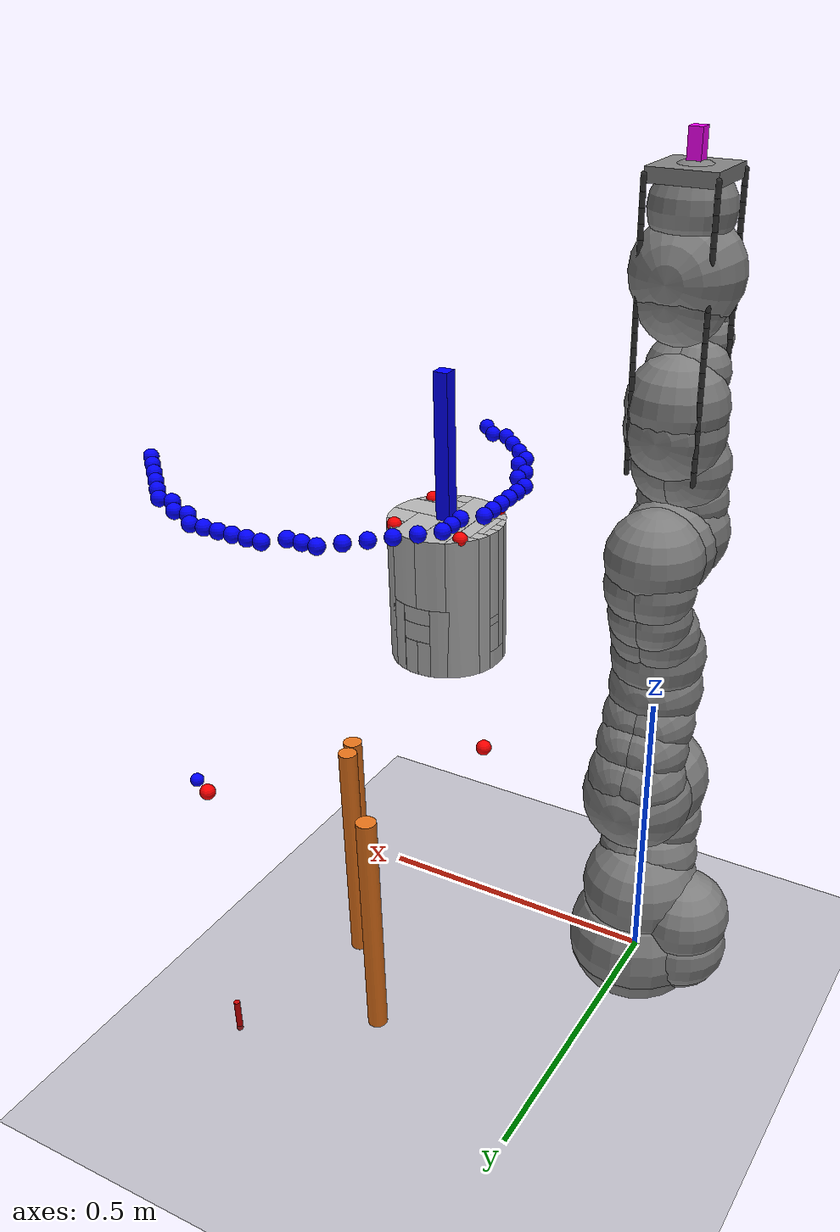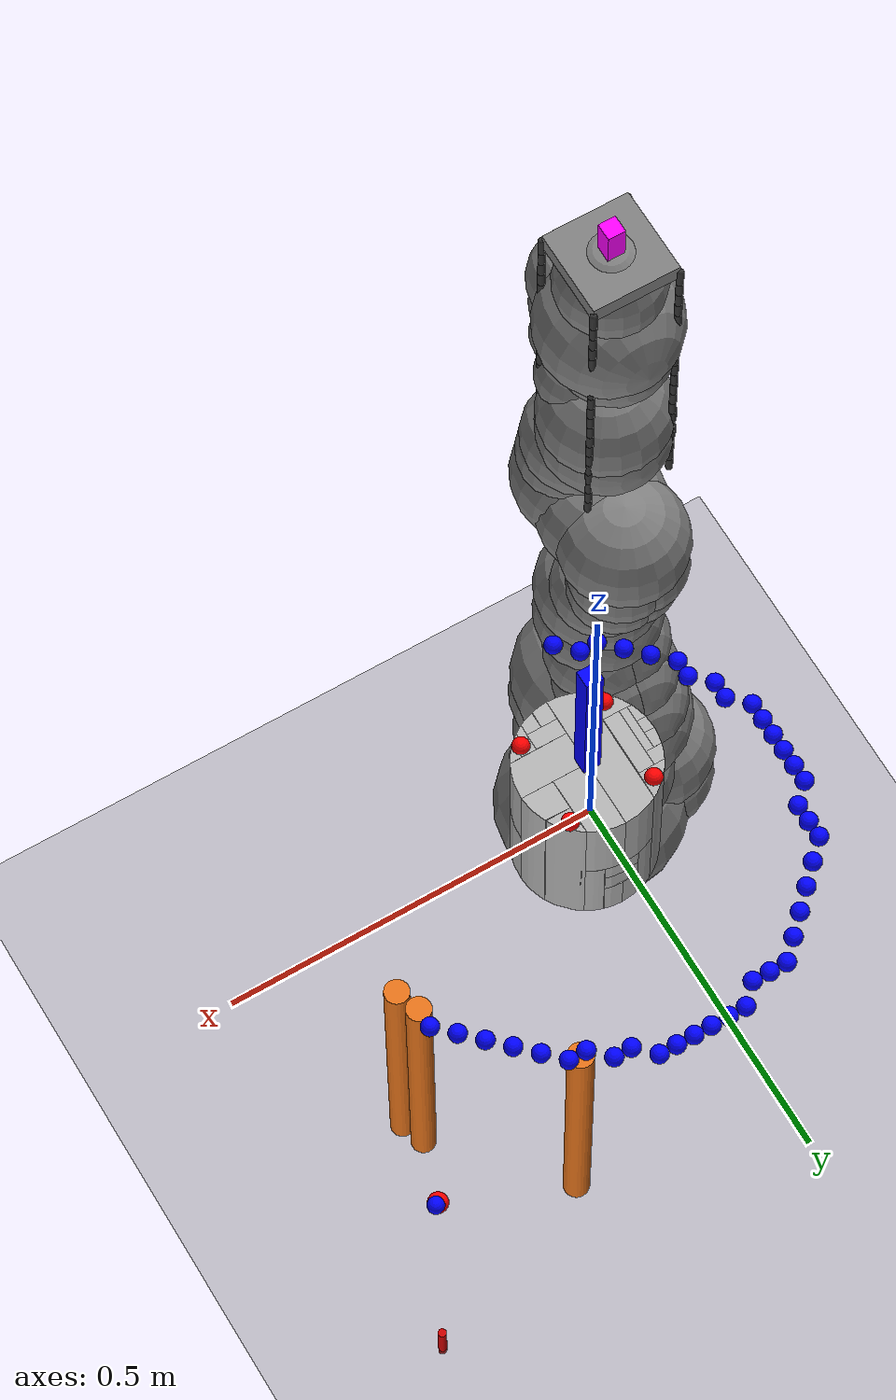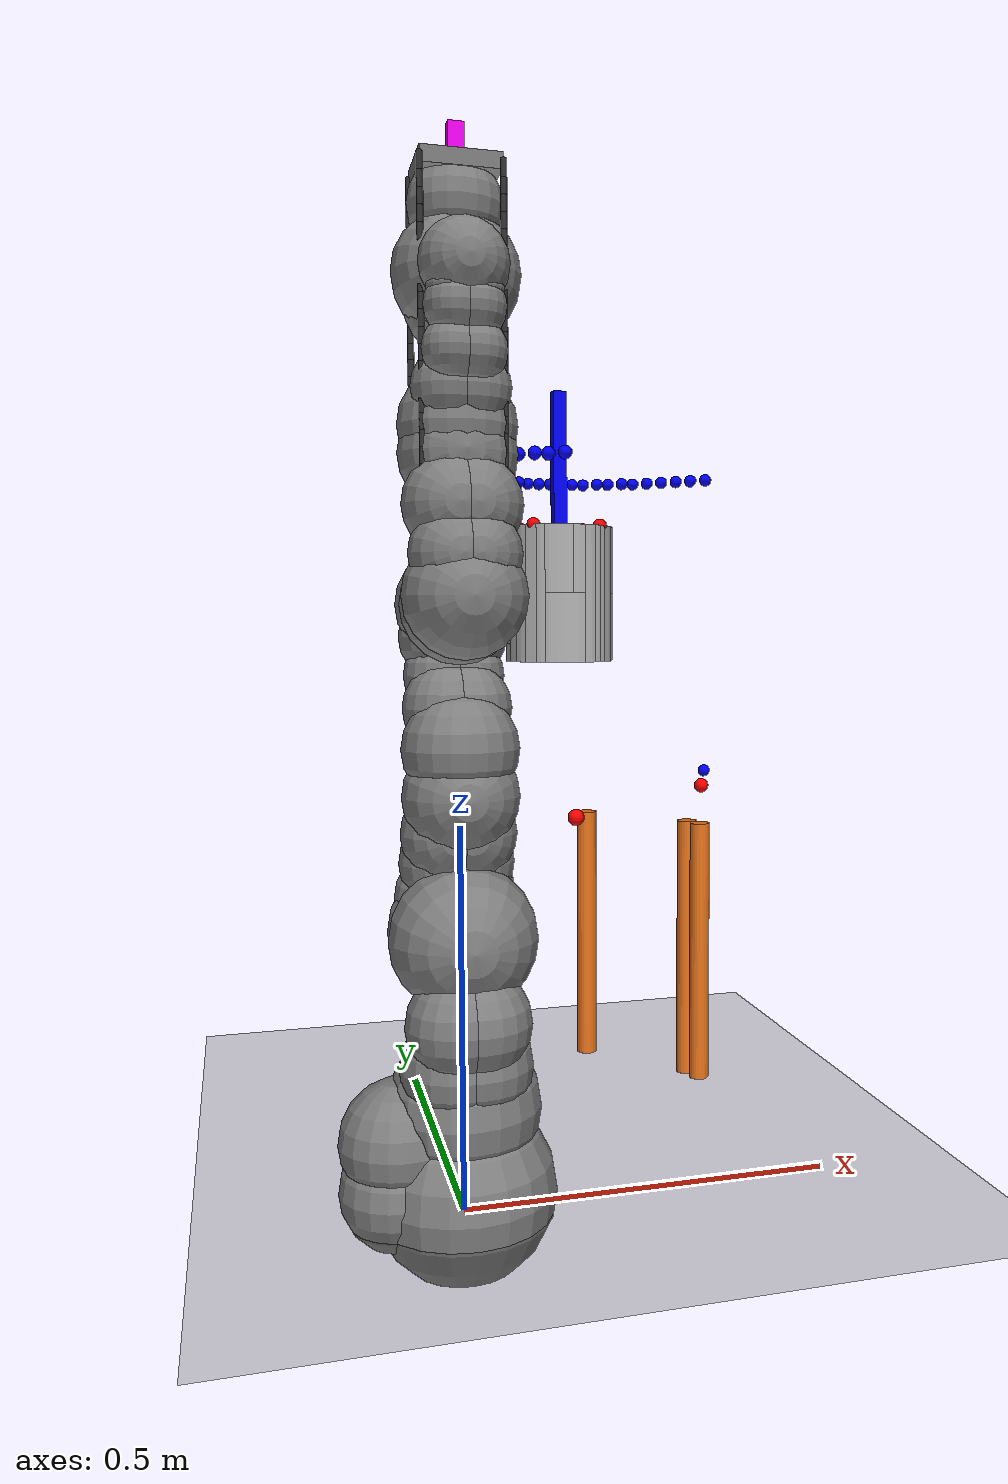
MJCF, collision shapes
<mujoco model="iiwa14_lifting_scene_sensors_compatible">

  <!-- 加载机械臂 -->
  <include file="iiwa14_four_cables_with_plate.xml"/>

  <option integrator="implicitfast" gravity="0 0 -9.81"/>

  <asset>
    <material name="groundplane" rgba="0.3 0.3 0.3 1"/>
    <material name="concrete" rgba="0.7 0.7 0.7 1.0"/>
    <material name="red" rgba="0.8 0 0 1"/>
    <material name="steel" rgba="0.6 0.6 0.6 1"/>
    <material name="obstacle" rgba="0.9 0.45 0.1 1"/>

    <mesh name="hollow_cylinder_convex_0"  file="hollow_cylinder_convex_0.stl"/>
    <mesh name="hollow_cylinder_convex_1"  file="hollow_cylinder_convex_1.stl"/>
    <mesh name="hollow_cylinder_convex_2"  file="hollow_cylinder_convex_2.stl"/>
    <mesh name="hollow_cylinder_convex_3"  file="hollow_cylinder_convex_3.stl"/>
    <mesh name="hollow_cylinder_convex_4"  file="hollow_cylinder_convex_4.stl"/>
    <mesh name="hollow_cylinder_convex_5"  file="hollow_cylinder_convex_5.stl"/>
    <mesh name="hollow_cylinder_convex_6"  file="hollow_cylinder_convex_6.stl"/>
    <mesh name="hollow_cylinder_convex_7"  file="hollow_cylinder_convex_7.stl"/>
    <mesh name="hollow_cylinder_convex_8"  file="hollow_cylinder_convex_8.stl"/>
    <mesh name="hollow_cylinder_convex_9"  file="hollow_cylinder_convex_9.stl"/>
    <mesh name="hollow_cylinder_convex_10"  file="hollow_cylinder_convex_10.stl"/>
    <mesh name="hollow_cylinder_convex_11"  file="hollow_cylinder_convex_11.stl"/>
    <mesh name="hollow_cylinder_convex_12"  file="hollow_cylinder_convex_12.stl"/>
    <mesh name="hollow_cylinder_convex_13"  file="hollow_cylinder_convex_13.stl"/>
    <mesh name="hollow_cylinder_convex_14"  file="hollow_cylinder_convex_14.stl"/>
    <mesh name="hollow_cylinder_convex_15"  file="hollow_cylinder_convex_15.stl"/>
    <mesh name="hollow_cylinder_convex_16"  file="hollow_cylinder_convex_16.stl"/>
    <mesh name="hollow_cylinder_convex_17"  file="hollow_cylinder_convex_17.stl"/>
    <mesh name="hollow_cylinder_convex_18"  file="hollow_cylinder_convex_18.stl"/>
    <mesh name="hollow_cylinder_convex_19"  file="hollow_cylinder_convex_19.stl"/>
    <mesh name="hollow_cylinder_convex_20"  file="hollow_cylinder_convex_20.stl"/>
    <mesh name="hollow_cylinder_convex_21"  file="hollow_cylinder_convex_21.stl"/>
    <mesh name="hollow_cylinder_convex_22"  file="hollow_cylinder_convex_22.stl"/>
    <mesh name="hollow_cylinder_convex_23"  file="hollow_cylinder_convex_23.stl"/>
    <mesh name="hollow_cylinder_convex_24"  file="hollow_cylinder_convex_24.stl"/>
    <mesh name="hollow_cylinder_convex_25"  file="hollow_cylinder_convex_25.stl"/>
    <mesh name="hollow_cylinder_convex_26"  file="hollow_cylinder_convex_26.stl"/>
    <mesh name="hollow_cylinder_convex_27"  file="hollow_cylinder_convex_27.stl"/>
    <mesh name="hollow_cylinder_convex_28"  file="hollow_cylinder_convex_28.stl"/>
    <mesh name="hollow_cylinder_convex_29"  file="hollow_cylinder_convex_29.stl"/>
    <mesh name="hollow_cylinder_convex_30"  file="hollow_cylinder_convex_30.stl"/>
    <mesh name="hollow_cylinder_convex_31"  file="hollow_cylinder_convex_31.stl"/>
    <mesh name="hollow_cylinder_convex_32"  file="hollow_cylinder_convex_32.stl"/>
    <mesh name="hollow_cylinder_convex_33"  file="hollow_cylinder_convex_33.stl"/>
    <mesh name="hollow_cylinder_convex_34"  file="hollow_cylinder_convex_34.stl"/>
    <mesh name="hollow_cylinder_convex_35"  file="hollow_cylinder_convex_35.stl"/>
    <mesh name="hollow_cylinder_convex_36"  file="hollow_cylinder_convex_36.stl"/>
    <mesh name="hollow_cylinder_convex_37"  file="hollow_cylinder_convex_37.stl"/>
    <mesh name="hollow_cylinder_convex_38"  file="hollow_cylinder_convex_38.stl"/>
    <mesh name="hollow_cylinder_convex_39"  file="hollow_cylinder_convex_39.stl"/>
    <mesh name="hollow_cylinder_convex_40"  file="hollow_cylinder_convex_40.stl"/>
    <mesh name="hollow_cylinder_convex_41"  file="hollow_cylinder_convex_41.stl"/>
    <mesh name="hollow_cylinder_convex_42"  file="hollow_cylinder_convex_42.stl"/>
    <mesh name="hollow_cylinder_convex_43"  file="hollow_cylinder_convex_43.stl"/>
    <mesh name="hollow_cylinder_convex_44"  file="hollow_cylinder_convex_44.stl"/>
    <mesh name="hollow_cylinder_convex_45"  file="hollow_cylinder_convex_45.stl"/>
    <mesh name="hollow_cylinder_convex_46"  file="hollow_cylinder_convex_46.stl"/>
    <mesh name="hollow_cylinder_convex_47"  file="hollow_cylinder_convex_47.stl"/>
    <mesh name="hollow_cylinder_convex_48"  file="hollow_cylinder_convex_48.stl"/>
    <mesh name="hollow_cylinder_convex_49"  file="hollow_cylinder_convex_49.stl"/>
    <mesh name="hollow_cylinder_convex_50"  file="hollow_cylinder_convex_50.stl"/>
    <mesh name="hollow_cylinder_convex_51"  file="hollow_cylinder_convex_51.stl"/>
    <mesh name="hollow_cylinder_convex_52"  file="hollow_cylinder_convex_52.stl"/>
    <mesh name="hollow_cylinder_convex_53"  file="hollow_cylinder_convex_53.stl"/>
    <mesh name="hollow_cylinder_convex_54"  file="hollow_cylinder_convex_54.stl"/>
    <mesh name="hollow_cylinder_convex_55"  file="hollow_cylinder_convex_55.stl"/>
    <mesh name="hollow_cylinder_convex_56"  file="hollow_cylinder_convex_56.stl"/>
    <mesh name="hollow_cylinder_convex_57"  file="hollow_cylinder_convex_57.stl"/>
    <mesh name="hollow_cylinder_convex_58"  file="hollow_cylinder_convex_58.stl"/>
    <mesh name="hollow_cylinder_convex_59"  file="hollow_cylinder_convex_59.stl"/>
    <mesh name="hollow_cylinder_convex_60"  file="hollow_cylinder_convex_60.stl"/>
    <mesh name="hollow_cylinder_convex_61"  file="hollow_cylinder_convex_61.stl"/>
    <mesh name="hollow_cylinder_convex_62"  file="hollow_cylinder_convex_62.stl"/>
    <mesh name="hollow_cylinder_convex_63" file="hollow_cylinder_convex_63.stl"/>
  </asset>

  <worldbody>
    <!-- 光照与地面 -->
    <light pos="1.5 0 1.5" dir="1 0 -1" directional="true"/>
    <geom name="floor" size="0 0 0.05" type="plane" material="groundplane"/>

    <body name="obstacle_0" pos="0.3994783036386943 0.28451013306688844 0.25">
      <geom type="cylinder" size="0.015010447751033636 0.2" pos="0 0 0" material="obstacle" contype="1" conaffinity="1"/>
    </body>

    <body name="obstacle_1" pos="0.4101102087107209 0.2545289002009352 0.25">
      <geom type="cylinder" size="0.01493990819244519 0.2" pos="0 0 0" material="obstacle" contype="1" conaffinity="1"/>
    </body>

    <body name="obstacle_2" pos="0.27374685554348693 0.42235008208541186 0.25">
      <geom type="cylinder" size="0.015717280523760754 0.2" pos="0 0 0" material="obstacle" contype="1" conaffinity="1"/>
    </body>

    <body name="path_pt_0" pos="0.18802957501972617 0.20958899200849007 1.0">
      <geom type="sphere" size="0.01" rgba="0 0 1 1" contype="0" conaffinity="0"/>
    </body>

    <body name="path_pt_1" pos="0.1680295750197262 0.22958899200849003 1.0">
      <geom type="sphere" size="0.01" rgba="0 0 1 1" contype="0" conaffinity="0"/>
    </body>

    <body name="path_pt_2" pos="0.1480295750197262 0.22958899200849003 1.0">
      <geom type="sphere" size="0.01" rgba="0 0 1 1" contype="0" conaffinity="0"/>
    </body>

    <body name="path_pt_3" pos="0.12802957501972617 0.24958899200849005 1.0">
      <geom type="sphere" size="0.01" rgba="0 0 1 1" contype="0" conaffinity="0"/>
    </body>

    <body name="path_pt_4" pos="0.10802957501972621 0.26958899200849007 1.0">
      <geom type="sphere" size="0.01" rgba="0 0 1 1" contype="0" conaffinity="0"/>
    </body>

    <body name="path_pt_5" pos="0.08802957501972619 0.2895889920084901 1.0">
      <geom type="sphere" size="0.01" rgba="0 0 1 1" contype="0" conaffinity="0"/>
    </body>

    <body name="path_pt_6" pos="0.08802957501972619 0.3095889920084901 1.0">
      <geom type="sphere" size="0.01" rgba="0 0 1 1" contype="0" conaffinity="0"/>
    </body>

    <body name="path_pt_7" pos="0.06802957501972617 0.32958899200849 1.0">
      <geom type="sphere" size="0.01" rgba="0 0 1 1" contype="0" conaffinity="0"/>
    </body>

    <body name="path_pt_8" pos="0.06802957501972617 0.34958899200849003 1.0">
      <geom type="sphere" size="0.01" rgba="0 0 1 1" contype="0" conaffinity="0"/>
    </body>

    <body name="path_pt_9" pos="0.048029575019726156 0.36958899200849005 1.0">
      <geom type="sphere" size="0.01" rgba="0 0 1 1" contype="0" conaffinity="0"/>
    </body>

    <body name="path_pt_10" pos="0.048029575019726156 0.38958899200849006 1.0">
      <geom type="sphere" size="0.01" rgba="0 0 1 1" contype="0" conaffinity="0"/>
    </body>

    <body name="path_pt_11" pos="0.048029575019726156 0.4095889920084901 1.0">
      <geom type="sphere" size="0.01" rgba="0 0 1 1" contype="0" conaffinity="0"/>
    </body>

    <body name="path_pt_12" pos="0.048029575019726156 0.4295889920084901 1.0">
      <geom type="sphere" size="0.01" rgba="0 0 1 1" contype="0" conaffinity="0"/>
    </body>

    <body name="path_pt_13" pos="0.048029575019726156 0.44958899200849 1.0">
      <geom type="sphere" size="0.01" rgba="0 0 1 1" contype="0" conaffinity="0"/>
    </body>

    <body name="path_pt_14" pos="0.048029575019726156 0.46958899200849 1.0">
      <geom type="sphere" size="0.01" rgba="0 0 1 1" contype="0" conaffinity="0"/>
    </body>

    <body name="path_pt_15" pos="0.06802957501972617 0.48958899200849004 1.0">
      <geom type="sphere" size="0.01" rgba="0 0 1 1" contype="0" conaffinity="0"/>
    </body>

    <body name="path_pt_16" pos="0.06802957501972617 0.5095889920084901 1.0">
      <geom type="sphere" size="0.01" rgba="0 0 1 1" contype="0" conaffinity="0"/>
    </body>

    <body name="path_pt_17" pos="0.06802957501972617 0.5295889920084901 1.0">
      <geom type="sphere" size="0.01" rgba="0 0 1 1" contype="0" conaffinity="0"/>
    </body>

    <body name="path_pt_18" pos="0.08802957501972619 0.5495889920084901 1.0">
      <geom type="sphere" size="0.01" rgba="0 0 1 1" contype="0" conaffinity="0"/>
    </body>

    <body name="path_pt_19" pos="0.10802957501972621 0.5695889920084901 1.0">
      <geom type="sphere" size="0.01" rgba="0 0 1 1" contype="0" conaffinity="0"/>
    </body>

    <body name="path_pt_20" pos="0.12802957501972617 0.58958899200849 1.0">
      <geom type="sphere" size="0.01" rgba="0 0 1 1" contype="0" conaffinity="0"/>
    </body>

    <body name="path_pt_21" pos="0.1480295750197262 0.60958899200849 1.0">
      <geom type="sphere" size="0.01" rgba="0 0 1 1" contype="0" conaffinity="0"/>
    </body>

    <body name="path_pt_22" pos="0.1680295750197262 0.6295889920084901 1.0">
      <geom type="sphere" size="0.01" rgba="0 0 1 1" contype="0" conaffinity="0"/>
    </body>

    <body name="path_pt_23" pos="0.18802957501972617 0.6295889920084901 1.0">
      <geom type="sphere" size="0.01" rgba="0 0 1 1" contype="0" conaffinity="0"/>
    </body>

    <body name="path_pt_24" pos="0.2080295750197262 0.6295889920084901 1.0">
      <geom type="sphere" size="0.01" rgba="0 0 1 1" contype="0" conaffinity="0"/>
    </body>

    <body name="path_pt_25" pos="0.2280295750197262 0.6495889920084901 1.0">
      <geom type="sphere" size="0.01" rgba="0 0 1 1" contype="0" conaffinity="0"/>
    </body>

    <body name="path_pt_26" pos="0.24802957501972617 0.6495889920084901 1.0">
      <geom type="sphere" size="0.01" rgba="0 0 1 1" contype="0" conaffinity="0"/>
    </body>

    <body name="path_pt_27" pos="0.2680295750197262 0.6495889920084901 1.0">
      <geom type="sphere" size="0.01" rgba="0 0 1 1" contype="0" conaffinity="0"/>
    </body>

    <body name="path_pt_28" pos="0.2880295750197262 0.6495889920084901 1.0">
      <geom type="sphere" size="0.01" rgba="0 0 1 1" contype="0" conaffinity="0"/>
    </body>

    <body name="path_pt_29" pos="0.3080295750197262 0.6495889920084901 1.0">
      <geom type="sphere" size="0.01" rgba="0 0 1 1" contype="0" conaffinity="0"/>
    </body>

    <body name="path_pt_30" pos="0.32802957501972624 0.6495889920084901 1.0">
      <geom type="sphere" size="0.01" rgba="0 0 1 1" contype="0" conaffinity="0"/>
    </body>

    <body name="path_pt_31" pos="0.34802957501972615 0.6295889920084901 1.0">
      <geom type="sphere" size="0.01" rgba="0 0 1 1" contype="0" conaffinity="0"/>
    </body>

    <body name="path_pt_32" pos="0.36802957501972616 0.6295889920084901 1.0">
      <geom type="sphere" size="0.01" rgba="0 0 1 1" contype="0" conaffinity="0"/>
    </body>

    <body name="path_pt_33" pos="0.3880295750197262 0.60958899200849 1.0">
      <geom type="sphere" size="0.01" rgba="0 0 1 1" contype="0" conaffinity="0"/>
    </body>

    <body name="path_pt_34" pos="0.4080295750197262 0.60958899200849 1.0">
      <geom type="sphere" size="0.01" rgba="0 0 1 1" contype="0" conaffinity="0"/>
    </body>

    <body name="path_pt_35" pos="0.4280295750197262 0.58958899200849 1.0">
      <geom type="sphere" size="0.01" rgba="0 0 1 1" contype="0" conaffinity="0"/>
    </body>

    <body name="path_pt_36" pos="0.44802957501972623 0.5695889920084901 1.0">
      <geom type="sphere" size="0.01" rgba="0 0 1 1" contype="0" conaffinity="0"/>
    </body>

    <body name="path_pt_37" pos="0.46802957501972614 0.5495889920084901 1.0">
      <geom type="sphere" size="0.01" rgba="0 0 1 1" contype="0" conaffinity="0"/>
    </body>

    <body name="path_pt_38" pos="0.48802957501972616 0.5295889920084901 1.0">
      <geom type="sphere" size="0.01" rgba="0 0 1 1" contype="0" conaffinity="0"/>
    </body>

    <body name="path_pt_39" pos="0.5080295750197261 0.5095889920084901 1.0">
      <geom type="sphere" size="0.01" rgba="0 0 1 1" contype="0" conaffinity="0"/>
    </body>

    <body name="path_pt_40" pos="0.5080295750197261 0.5095889920084901 0.5">
      <geom type="sphere" size="0.01" rgba="0 0 1 1" contype="0" conaffinity="0"/>
    </body>

    <body name="path_pt_41" pos="0.5080295750197261 0.5095889920084901 0.5">
      <geom type="sphere" size="0.01" rgba="0 0 1 1" contype="0" conaffinity="0"/>
    </body>

    <body name="path_pt_42" pos="0.5080295750197261 0.5095889920084901 0.5">
      <geom type="sphere" size="0.01" rgba="0 0 1 1" contype="0" conaffinity="0"/>
    </body>

    <body name="path_pt_43" pos="0.5080295750197261 0.5095889920084901 0.5">
      <geom type="sphere" size="0.01" rgba="0 0 1 1" contype="0" conaffinity="0"/>
    </body>

    <body name="path_pt_44" pos="0.5080295750197261 0.5095889920084901 0.5">
      <geom type="sphere" size="0.01" rgba="0 0 1 1" contype="0" conaffinity="0"/>
    </body>

    <body name="path_pt_45" pos="0.5080295750197261 0.5095889920084901 0.5">
      <geom type="sphere" size="0.01" rgba="0 0 1 1" contype="0" conaffinity="0"/>
    </body>

    <body name="path_start" pos="0.2 0.2 0.47500000000000003">
      <geom type="sphere" size="0.012" rgba="1 0 0 1" contype="0" conaffinity="0"/>
    </body>

    <body name="path_goal" pos="0.5 0.5 0.47500000000000003">
      <geom type="sphere" size="0.012" rgba="1 0 0 1" contype="0" conaffinity="0"/>
    </body>

    <!--  固定钢筋 -->
    <body name="rebar_base" pos="0.5 0.5 0">
      <geom type="cylinder" size="0.005 0.03" pos=" 0 0 0.02" material="red" contype="1" conaffinity="1"/>
    </body>

    <!-- 吊装构件 -->
    <body name="prefab" pos="0.2 0.3 0.8">
      <joint type="free"/>
      <geom type="mesh" mesh="hollow_cylinder_convex_0" material="concrete" mass="0.0156"/>
      <geom type="mesh" mesh="hollow_cylinder_convex_1" material="concrete" mass="0.0156"/>
      <geom type="mesh" mesh="hollow_cylinder_convex_2" material="concrete" mass="0.0156"/>
      <geom type="mesh" mesh="hollow_cylinder_convex_3" material="concrete" mass="0.0156"/>
      <geom type="mesh" mesh="hollow_cylinder_convex_4" material="concrete" mass="0.0156"/>
      <geom type="mesh" mesh="hollow_cylinder_convex_5" material="concrete" mass="0.0156"/>
      <geom type="mesh" mesh="hollow_cylinder_convex_6" material="concrete" mass="0.0156"/>
      <geom type="mesh" mesh="hollow_cylinder_convex_7" material="concrete" mass="0.0156"/>
      <geom type="mesh" mesh="hollow_cylinder_convex_8" material="concrete" mass="0.0156"/>
      <geom type="mesh" mesh="hollow_cylinder_convex_9" material="concrete" mass="0.0156"/>
      <geom type="mesh" mesh="hollow_cylinder_convex_10" material="concrete" mass="0.0156"/>
      <geom type="mesh" mesh="hollow_cylinder_convex_11" material="concrete" mass="0.0156"/>
      <geom type="mesh" mesh="hollow_cylinder_convex_12" material="concrete" mass="0.0156"/>
      <geom type="mesh" mesh="hollow_cylinder_convex_13" material="concrete" mass="0.0156"/>
      <geom type="mesh" mesh="hollow_cylinder_convex_14" material="concrete" mass="0.0156"/>
      <geom type="mesh" mesh="hollow_cylinder_convex_15" material="concrete" mass="0.0156"/>
      <geom type="mesh" mesh="hollow_cylinder_convex_16" material="concrete" mass="0.0156"/>
      <geom type="mesh" mesh="hollow_cylinder_convex_17" material="concrete" mass="0.0156"/>
      <geom type="mesh" mesh="hollow_cylinder_convex_18" material="concrete" mass="0.0156"/>
      <geom type="mesh" mesh="hollow_cylinder_convex_19" material="concrete" mass="0.0156"/>
      <geom type="mesh" mesh="hollow_cylinder_convex_20" material="concrete" mass="0.0156"/>
      <geom type="mesh" mesh="hollow_cylinder_convex_21" material="concrete" mass="0.0156"/>
      <geom type="mesh" mesh="hollow_cylinder_convex_22" material="concrete" mass="0.0156"/>
      <geom type="mesh" mesh="hollow_cylinder_convex_23" material="concrete" mass="0.0156"/>
      <geom type="mesh" mesh="hollow_cylinder_convex_24" material="concrete" mass="0.0156"/>
      <geom type="mesh" mesh="hollow_cylinder_convex_25" material="concrete" mass="0.0156"/>
      <geom type="mesh" mesh="hollow_cylinder_convex_26" material="concrete" mass="0.0156"/>
      <geom type="mesh" mesh="hollow_cylinder_convex_27" material="concrete" mass="0.0156"/>
      <geom type="mesh" mesh="hollow_cylinder_convex_28" material="concrete" mass="0.0156"/>
      <geom type="mesh" mesh="hollow_cylinder_convex_29" material="concrete" mass="0.0156"/>
      <geom type="mesh" mesh="hollow_cylinder_convex_30" material="concrete" mass="0.0156"/>
      <geom type="mesh" mesh="hollow_cylinder_convex_31" material="concrete" mass="0.0156"/>
      <geom type="mesh" mesh="hollow_cylinder_convex_32" material="concrete" mass="0.0156"/>
      <geom type="mesh" mesh="hollow_cylinder_convex_33" material="concrete" mass="0.0156"/>
      <geom type="mesh" mesh="hollow_cylinder_convex_34" material="concrete" mass="0.0156"/>
      <geom type="mesh" mesh="hollow_cylinder_convex_35" material="concrete" mass="0.0156"/>
      <geom type="mesh" mesh="hollow_cylinder_convex_36" material="concrete" mass="0.0156"/>
      <geom type="mesh" mesh="hollow_cylinder_convex_37" material="concrete" mass="0.0156"/>
      <geom type="mesh" mesh="hollow_cylinder_convex_38" material="concrete" mass="0.0156"/>
      <geom type="mesh" mesh="hollow_cylinder_convex_39" material="concrete" mass="0.0156"/>
      <geom type="mesh" mesh="hollow_cylinder_convex_40" material="concrete" mass="0.0156"/>
      <geom type="mesh" mesh="hollow_cylinder_convex_41" material="concrete" mass="0.0156"/>
      <geom type="mesh" mesh="hollow_cylinder_convex_42" material="concrete" mass="0.0156"/>
      <geom type="mesh" mesh="hollow_cylinder_convex_43" material="concrete" mass="0.0156"/>
      <geom type="mesh" mesh="hollow_cylinder_convex_44" material="concrete" mass="0.0156"/>
      <geom type="mesh" mesh="hollow_cylinder_convex_45" material="concrete" mass="0.0156"/>
      <geom type="mesh" mesh="hollow_cylinder_convex_46" material="concrete" mass="0.0156"/>
      <geom type="mesh" mesh="hollow_cylinder_convex_47" material="concrete" mass="0.0156"/>
      <geom type="mesh" mesh="hollow_cylinder_convex_48" material="concrete" mass="0.0156"/>
      <geom type="mesh" mesh="hollow_cylinder_convex_49" material="concrete" mass="0.0156"/>
      <geom type="mesh" mesh="hollow_cylinder_convex_50" material="concrete" mass="0.0156"/>
      <geom type="mesh" mesh="hollow_cylinder_convex_51" material="concrete" mass="0.0156"/>
      <geom type="mesh" mesh="hollow_cylinder_convex_52" material="concrete" mass="0.0156"/>
      <geom type="mesh" mesh="hollow_cylinder_convex_53" material="concrete" mass="0.0156"/>
      <geom type="mesh" mesh="hollow_cylinder_convex_54" material="concrete" mass="0.0156"/>
      <geom type="mesh" mesh="hollow_cylinder_convex_55" material="concrete" mass="0.0156"/>
      <geom type="mesh" mesh="hollow_cylinder_convex_56" material="concrete" mass="0.0156"/>
      <geom type="mesh" mesh="hollow_cylinder_convex_57" material="concrete" mass="0.0156"/>
      <geom type="mesh" mesh="hollow_cylinder_convex_58" material="concrete" mass="0.0156"/>
      <geom type="mesh" mesh="hollow_cylinder_convex_59" material="concrete" mass="1"/>
      <geom type="mesh" mesh="hollow_cylinder_convex_60" material="concrete" mass="0.0156"/>
      <geom type="mesh" mesh="hollow_cylinder_convex_61" material="concrete" mass="0.0156"/>
      <geom type="mesh" mesh="hollow_cylinder_convex_62" material="concrete" mass="0.0156"/>
      <geom type="mesh" mesh="hollow_cylinder_convex_63" material="concrete" mass="0.0156"/>

      <!-- 四个吊点 -->
      <site name="lift_fl" pos=" 0.05  0.05  0.1" size="0.01" rgba="1 0 0 1"/>
      <site name="lift_fr" pos=" 0.05 -0.05  0.1" size="0.01" rgba="1 0 0 1"/>
      <site name="lift_rl" pos="-0.05  0.05  0.1" size="0.01" rgba="1 0 0 1"/>
      <site name="lift_rr" pos="-0.05 -0.05  0.1" size="0.01" rgba="1 0 0 1"/>

      <!-- ✅ IMU 传感器安装点 -->
      <site name="imu_site" pos="0 0 0" size="0.01" rgba="0 1 0 1"/>
    </body>

    <body mocap="true" name="mocap" pos="0.2 0.3 1.0" quat="0 0 1 0">
      <geom type="box" size="0.01 0.01 0.1" rgba="0 0 1 1"/>
    </body>

  </worldbody>

  <!-- 绑定挂点到机械臂末端 -->
  <equality>
      <!-- 使用刚体绳索末端与负载四吊点连接 -->
      <connect site1="rope_fl_end" site2="lift_fl"/>
      <connect site1="rope_fr_end" site2="lift_fr"/>
      <connect site1="rope_rl_end" site2="lift_rl"/>
      <connect site1="rope_rr_end" site2="lift_rr"/>
  </equality>

  <sensor>
    <framepos name="prefab/pos" objtype="site" objname="imu_site"/>
    <framelinvel name="prefab/vel" objtype="site" objname="imu_site"/>
    <framepos name="end/pos" objtype="site" objname="attachment_site"/>
    <framelinvel name="end/vel" objtype="site" objname="attachment_site"/>
  </sensor>

  <keyframe>
    <key name="home" qpos="0.955545 0.391462 -2.86463 0.00599717 2.97003 2.37487 7.3179
                                 0.2 0.3 0.3  1 0 0 0"/>
  </keyframe>

</mujoco>

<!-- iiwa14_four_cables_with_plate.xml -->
<mujoco model="iiwa14">
  <compiler angle="radian" meshdir="assets" autolimits="true"/>
  <option integrator="implicitfast"/>

  <default>
    <default class="iiwa">
      <material specular="0.5" shininess="0.25"/>
      <joint axis="0 0 1" damping="1.2"/>
      <general gaintype="fixed" biastype="affine" gainprm="0" biasprm="0 -50 -5"/>
      <default class="joint1">
        <joint range="-2.96706 2.96706"/>
        <general ctrlrange="-2.96706 2.96706"/>
        <default class="joint2">
          <joint range="-2.0944 2.0944"/>
          <general ctrlrange="-2.0944 2.0944"/>
        </default>
      </default>
      <default class="joint3">
        <joint range="-3.05433 3.05433"/>
        <general ctrlrange="-3.05433 3.05433"/>
      </default>
      <default class="visual">
        <geom type="mesh" contype="0" conaffinity="0" group="2" material="gray"/>
      </default>
      <default class="collision">
        <geom group="3"/>
      </default>
      <site size="0.001" rgba="1 0 0 1" group="4"/>
    </default>
  </default>

  <asset>
    <material class="iiwa" name="gray" rgba="0.4 0.4 0.4 1"/>
    <material class="iiwa" name="light_gray" rgba="0.6 0.6 0.6 1"/>
    <material class="iiwa" name="black" rgba="0 0 0 1"/>
    <material class="iiwa" name="orange" rgba="1 0.423529 0.0392157 1"/>
    <material name="rope" rgba="0.2 0.2 0.2 1"/>

    <mesh file="link_0.obj"/>
    <mesh file="link_1.obj"/>
    <mesh file="link_2_orange.obj"/>
    <mesh file="link_2_grey.obj"/>
    <mesh file="link_3.obj"/>
    <mesh file="band.obj"/>
    <mesh file="kuka.obj"/>
    <mesh file="link_4_orange.obj"/>
    <mesh file="link_4_grey.obj"/>
    <mesh file="link_5.obj"/>
    <mesh file="link_6_orange.obj"/>
    <mesh file="link_6_grey.obj"/>
    <mesh file="link_7.obj"/>
  </asset>

  <worldbody>
    <light name="top" pos="0 0 2" mode="trackcom"/>
    <body name="base" childclass="iiwa">
      <inertial mass="5" pos="-0.1 0 0.07" diaginertia="0.05 0.06 0.03"/>
      <geom class="visual" mesh="link_0"/>
      <geom class="collision" size="0.12" pos="0 0 0.03"/>
      <geom class="collision" size="0.08" pos="-0.08 0 0.103"/>
      <geom class="collision" size="0.08" pos="-0.08 0 0.04"/>
      <geom class="collision" size="0.1" pos="0 0 0.14"/>
      <body name="link1" pos="0 0 0.1575">
        <inertial mass="5.76" pos="0 -0.03 0.12" diaginertia="0.0333 0.033 0.0123"/>
        <joint name="joint1" class="joint1"/>
        <geom class="visual" mesh="link_1"/>
        <geom class="collision" size="0.08" pos="0 0 -0.0005"/>
        <geom class="collision" size="0.075" pos="0.01 -0.025 0.0425"/>
        <geom class="collision" size="0.075" pos="-0.01 -0.025 0.0425"/>
        <geom class="collision" size="0.07" pos="0.01 -0.045 0.1025"/>
        <geom class="collision" size="0.07" pos="-0.01 -0.045 0.1025"/>
        <body name="link2" pos="0 0 0.2025" quat="0 0 1 1">
          <inertial mass="6.35" pos="0.0003 0.059 0.042" diaginertia="0.0305 0.0304 0.011" quat="0 0 1 1"/>
          <joint name="joint2" class="joint2"/>
          <geom class="visual" material="orange" mesh="link_2_orange"/>
          <geom class="visual" mesh="link_2_grey"/>
          <geom class="collision" size="0.095" pos="0 0 -0.01"/>
          <geom class="collision" size="0.09" pos="0 0 0.045"/>
          <geom class="collision" size="0.07" pos="-0.01 0.04 0.054"/>
          <geom class="collision" size="0.065" pos="-0.01 0.09 0.04"/>
          <geom class="collision" size="0.065" pos="-0.01 0.13 0.02"/>
          <geom class="collision" size="0.07" pos="0.01 0.04 0.054"/>
          <geom class="collision" size="0.065" pos="0.01 0.09 0.04"/>
          <geom class="collision" size="0.065" pos="0.01 0.13 0.02"/>
          <geom class="collision" size="0.075" pos="0 0.18 0"/>
          <body name="link3" pos="0 0.2045 0" quat="0 0 1 1">
            <inertial mass="3.5" pos="0 0.03 0.13" diaginertia="0.025 0.0238 0.0076"/>
            <joint name="joint3" class="joint1"/>
            <geom class="visual" mesh="link_3"/>
            <geom class="visual" material="light_gray" mesh="band"/>
            <geom class="visual" material="black" mesh="kuka"/>
            <geom class="collision" size="0.075" pos="0 0 0.0355"/>
            <geom class="collision" size="0.06" pos="0.01 0.023 0.0855"/>
            <geom class="collision" size="0.055" pos="0.01 0.048 0.1255"/>
            <geom class="collision" size="0.06" pos="0.01 0.056 0.1755"/>
            <geom class="collision" size="0.06" pos="-0.01 0.023 0.0855"/>
            <geom class="collision" size="0.055" pos="-0.01 0.048 0.1255"/>
            <geom class="collision" size="0.06" pos="-0.01 0.056 0.1755"/>
            <geom class="collision" size="0.075" pos="0 0.045 0.2155"/>
            <geom class="collision" size="0.075" pos="0 0 0.2155"/>
            <body name="link4" pos="0 0 0.2155" quat="1 1 0 0">
              <inertial mass="3.5" pos="0 0.067 0.034" diaginertia="0.017 0.0164 0.006" quat="1 1 0 0"/>
              <joint name="joint4" class="joint2"/>
              <geom class="visual" material="orange" mesh="link_4_orange"/>
              <geom class="visual" mesh="link_4_grey"/>
              <geom class="collision" size="0.078" pos="0 0.01 0.046"/>
              <geom class="collision" size="0.06" pos="0.01 0.06 0.052"/>
              <geom class="collision" size="0.065" pos="0.01 0.12 0.034"/>
              <geom class="collision" size="0.06" pos="-0.01 0.06 0.052"/>
              <geom class="collision" size="0.065" pos="-0.01 0.12 0.034"/>
              <geom class="collision" size="0.075" pos="0 0.184 0"/>
              <body name="link5" pos="0 0.1845 0" quat="0 0 1 1">
                <inertial mass="3.5" pos="0.0001 0.021 0.076" diaginertia="0.01 0.0087 0.00449"/>
                <joint name="joint5" class="joint1"/>
                <geom class="visual" mesh="link_5"/>
                <geom class="visual" material="light_gray" mesh="band"/>
                <geom class="visual" material="black" mesh="kuka"/>
                <geom class="collision" size="0.075" pos="0 0 0.0335"/>
                <geom class="collision" size="0.05" pos="-0.012 0.031 0.0755"/>
                <geom class="collision" size="0.05" pos="0.012 0.031 0.0755"/>
                <geom class="collision" size="0.04" pos="-0.012 0.06 0.1155"/>
                <geom class="collision" size="0.04" pos="0.012 0.06 0.1155"/>
                <geom class="collision" size="0.04" pos="-0.01 0.065 0.1655"/>
                <geom class="collision" size="0.04" pos="0.01 0.065 0.1655"/>
                <geom class="collision" size="0.035" pos="-0.012 0.065 0.1855"/>
                <geom class="collision" size="0.035" pos="0.012 0.065 0.1855"/>
                <body name="link6" pos="0 0 0.2155" quat="1 1 0 0">
                  <inertial mass="1.8" pos="0 0.0006 0.0004" diaginertia="0.0049 0.0047 0.0036" quat="1 1 0 0"/>
                  <joint name="joint6" class="joint2"/>
                  <geom class="visual" material="orange" mesh="link_6_orange"/>
                  <geom class="visual" mesh="link_6_grey"/>
                  <geom class="collision" size="0.055" pos="0 0 -0.059"/>
                  <geom class="collision" size="0.065" pos="0 -0.03 0.011"/>
                  <geom class="collision" size="0.08"/>
                  <body name="link7" pos="0 0.081 0" quat="0 0 1 1">
                    <inertial mass="1.2" pos="0 0 0.02" diaginertia="0.001 0.001 0.001"/>
                    <joint name="joint7" class="joint3"/>
                    <geom class="visual" mesh="link_7"/>
                    <geom class="collision" size="0.06" pos="0 0 0.001"/>
                    <site pos="0 0 0.045" name="attachment_site" size="0.01" rgba="0 1 1 1" type="sphere" group="1"/>

                    <!-- end-effector payload plate + rigid cables -->
                    <body name="hook_attachment" pos="0 0 0.045">
                      <geom type="box" size="0.05 0.05 0.01" pos="0 0 0"
                            rgba="0.5 0.5 0.5 0.8" mass="0.1"/>
                      <site name="hook_fl" pos="0.05 0.05 0.05" size="0.01" rgba="0 0 1 1"/>
                      <site name="hook_fr" pos="0.05 -0.05 0.05" size="0.01" rgba="0 0 1 1"/>
                      <site name="hook_rl" pos="-0.05 0.05 0.05" size="0.01" rgba="0 0 1 1"/>
                      <site name="hook_rr" pos="-0.05 -0.05 0.05" size="0.01" rgba="0 0 1 1"/>
                      <camera name="end_effector_cam"
                              pos="0 0 0"
                              xyaxes="1 0 0  0 1 0"
                              fovy="60"/>
                      <body name="rope_fl_root" pos="0.05 0.05 0">
                        <joint type="ball" damping="0.02"/>
                        <geom type="capsule"
                              fromto="0 0 0   0 0 -0.020000"
                              size="0.004000"
                              mass="0.01"
                              material="rope"/>

                        <body name="rope_fl_1" pos="0 0 -0.020000">
                          <geom type="capsule" fromto="0 0 0   0 0 -0.020000"
                                size="0.004000" mass="0.01" material="rope"/>
                          <joint type="ball" damping="0.02"/>

                          <body name="rope_fl_2" pos="0 0 -0.020000">
                            <geom type="capsule" fromto="0 0 0   0 0 -0.020000"
                                  size="0.004000" mass="0.01" material="rope"/>
                            <joint type="ball" damping="0.02"/>

                            <body name="rope_fl_3" pos="0 0 -0.020000">
                              <geom type="capsule" fromto="0 0 0   0 0 -0.020000"
                                    size="0.004000" mass="0.01" material="rope"/>
                              <joint type="ball" damping="0.02"/>

                              <body name="rope_fl_4" pos="0 0 -0.020000">
                                <geom type="capsule" fromto="0 0 0   0 0 -0.020000"
                                      size="0.004000" mass="0.01" material="rope"/>
                                <joint type="ball" damping="0.02"/>

                                <body name="rope_fl_5" pos="0 0 -0.020000">
                                  <geom type="capsule" fromto="0 0 0   0 0 -0.020000"
                                        size="0.004000" mass="0.01" material="rope"/>
                                  <joint type="ball" damping="0.02"/>

                                  <body name="rope_fl_6" pos="0 0 -0.020000">
                                    <geom type="capsule" fromto="0 0 0   0 0 -0.020000"
                                          size="0.004000" mass="0.01" material="rope"/>
                                    <joint type="ball" damping="0.02"/>

                                    <body name="rope_fl_7" pos="0 0 -0.020000">
                                      <geom type="capsule" fromto="0 0 0   0 0 -0.020000"
                                            size="0.004000" mass="0.01" material="rope"/>
                                      <joint type="ball" damping="0.02"/>

                                      <body name="rope_fl_8" pos="0 0 -0.020000">
                                        <geom type="capsule" fromto="0 0 0   0 0 -0.020000"
                                              size="0.004000" mass="0.01" material="rope"/>
                                        <joint type="ball" damping="0.02"/>

                                        <body name="rope_fl_9" pos="0 0 -0.020000">
                                          <geom type="capsule" fromto="0 0 0   0 0 -0.020000"
                                                size="0.004000" mass="0.01" material="rope"/>
                                          <joint type="ball" damping="0.02"/>

                                          <body name="rope_fl_10" pos="0 0 -0.020000">
                                            <geom type="capsule" fromto="0 0 0   0 0 -0.020000"
                                                  size="0.004000" mass="0.01" material="rope"/>
                                            <joint type="ball" damping="0.02"/>

                                            <body name="rope_fl_11" pos="0 0 -0.020000">
                                              <geom type="capsule" fromto="0 0 0   0 0 -0.020000"
                                                    size="0.004000" mass="0.01" material="rope"/>
                                              <joint type="ball" damping="0.02"/>

                                              <body name="rope_fl_12" pos="0 0 -0.020000">
                                                <geom type="capsule" fromto="0 0 0   0 0 -0.020000"
                                                      size="0.004000" mass="0.01" material="rope"/>
                                                <joint type="ball" damping="0.02"/>

                                                <body name="rope_fl_13" pos="0 0 -0.020000">
                                                  <geom type="capsule" fromto="0 0 0   0 0 -0.020000"
                                                        size="0.004000" mass="0.01" material="rope"/>
                                                  <joint type="ball" damping="0.02"/>

                                                  <body name="rope_fl_14" pos="0 0 -0.020000">
                                                    <geom type="capsule" fromto="0 0 0   0 0 -0.020000"
                                                          size="0.004000" mass="0.01" material="rope"/>
                                                    <joint type="ball" damping="0.02"/>

                                                    <body name="rope_fl_15" pos="0 0 -0.020000">
                                                      <geom type="capsule" fromto="0 0 0   0 0 -0.020000"
                                                            size="0.004000" mass="0.01" material="rope"/>
                                                      <joint type="ball" damping="0.02"/>

                                                      <body name="rope_fl_16" pos="0 0 -0.020000">
                                                        <geom type="capsule" fromto="0 0 0   0 0 -0.020000"
                                                              size="0.004000" mass="0.01" material="rope"/>
                                                        <joint type="ball" damping="0.02"/>

                                                        <body name="rope_fl_17" pos="0 0 -0.020000">
                                                          <geom type="capsule" fromto="0 0 0   0 0 -0.020000"
                                                                size="0.004000" mass="0.01" material="rope"/>
                                                          <joint type="ball" damping="0.02"/>

                                                          <body name="rope_fl_18" pos="0 0 -0.020000">
                                                            <geom type="capsule" fromto="0 0 0   0 0 -0.020000"
                                                                  size="0.004000" mass="0.01" material="rope"/>
                                                            <joint type="ball" damping="0.02"/>

                                                            <body name="rope_fl_19" pos="0 0 -0.020000">
                                                              <geom type="capsule" fromto="0 0 0   0 0 -0.020000"
                                                                    size="0.004000" mass="0.01" material="rope"/>
                                                              <joint type="ball" damping="0.02"/>

                                                              <site name="rope_fl_end" pos="0 0 -0.020000"
                                                                    size="0.006" rgba="1 1 0 1"/>
                                                            </body>
                                                          </body>
                                                        </body>
                                                      </body>
                                                    </body>
                                                  </body>
                                                </body>
                                              </body>
                                            </body>
                                          </body>
                                        </body>
                                      </body>
                                    </body>
                                  </body>
                                </body>
                              </body>
                            </body>
                          </body>
                        </body>
                      </body>
                      <body name="rope_fr_root" pos="0.05 -0.05 0">
                        <joint type="ball" damping="0.02"/>
                        <geom type="capsule"
                              fromto="0 0 0   0 0 -0.020000"
                              size="0.004000"
                              mass="0.01"
                              material="rope"/>

                        <body name="rope_fr_1" pos="0 0 -0.020000">
                          <geom type="capsule" fromto="0 0 0   0 0 -0.020000"
                                size="0.004000" mass="0.01" material="rope"/>
                          <joint type="ball" damping="0.02"/>

                          <body name="rope_fr_2" pos="0 0 -0.020000">
                            <geom type="capsule" fromto="0 0 0   0 0 -0.020000"
                                  size="0.004000" mass="0.01" material="rope"/>
                            <joint type="ball" damping="0.02"/>

                            <body name="rope_fr_3" pos="0 0 -0.020000">
                              <geom type="capsule" fromto="0 0 0   0 0 -0.020000"
                                    size="0.004000" mass="0.01" material="rope"/>
                              <joint type="ball" damping="0.02"/>

                              <body name="rope_fr_4" pos="0 0 -0.020000">
                                <geom type="capsule" fromto="0 0 0   0 0 -0.020000"
                                      size="0.004000" mass="0.01" material="rope"/>
                                <joint type="ball" damping="0.02"/>

                                <body name="rope_fr_5" pos="0 0 -0.020000">
                                  <geom type="capsule" fromto="0 0 0   0 0 -0.020000"
                                        size="0.004000" mass="0.01" material="rope"/>
                                  <joint type="ball" damping="0.02"/>

                                  <body name="rope_fr_6" pos="0 0 -0.020000">
                                    <geom type="capsule" fromto="0 0 0   0 0 -0.020000"
                                          size="0.004000" mass="0.01" material="rope"/>
                                    <joint type="ball" damping="0.02"/>

                                    <body name="rope_fr_7" pos="0 0 -0.020000">
                                      <geom type="capsule" fromto="0 0 0   0 0 -0.020000"
                                            size="0.004000" mass="0.01" material="rope"/>
                                      <joint type="ball" damping="0.02"/>

                                      <body name="rope_fr_8" pos="0 0 -0.020000">
                                        <geom type="capsule" fromto="0 0 0   0 0 -0.020000"
                                              size="0.004000" mass="0.01" material="rope"/>
                                        <joint type="ball" damping="0.02"/>

                                        <body name="rope_fr_9" pos="0 0 -0.020000">
                                          <geom type="capsule" fromto="0 0 0   0 0 -0.020000"
                                                size="0.004000" mass="0.01" material="rope"/>
                                          <joint type="ball" damping="0.02"/>

                                          <body name="rope_fr_10" pos="0 0 -0.020000">
                                            <geom type="capsule" fromto="0 0 0   0 0 -0.020000"
                                                  size="0.004000" mass="0.01" material="rope"/>
                                            <joint type="ball" damping="0.02"/>

                                            <body name="rope_fr_11" pos="0 0 -0.020000">
                                              <geom type="capsule" fromto="0 0 0   0 0 -0.020000"
                                                    size="0.004000" mass="0.01" material="rope"/>
                                              <joint type="ball" damping="0.02"/>

                                              <body name="rope_fr_12" pos="0 0 -0.020000">
                                                <geom type="capsule" fromto="0 0 0   0 0 -0.020000"
                                                      size="0.004000" mass="0.01" material="rope"/>
                                                <joint type="ball" damping="0.02"/>

                                                <body name="rope_fr_13" pos="0 0 -0.020000">
                                                  <geom type="capsule" fromto="0 0 0   0 0 -0.020000"
                                                        size="0.004000" mass="0.01" material="rope"/>
                                                  <joint type="ball" damping="0.02"/>

                                                  <body name="rope_fr_14" pos="0 0 -0.020000">
                                                    <geom type="capsule" fromto="0 0 0   0 0 -0.020000"
                                                          size="0.004000" mass="0.01" material="rope"/>
                                                    <joint type="ball" damping="0.02"/>

                                                    <body name="rope_fr_15" pos="0 0 -0.020000">
                                                      <geom type="capsule" fromto="0 0 0   0 0 -0.020000"
                                                            size="0.004000" mass="0.01" material="rope"/>
                                                      <joint type="ball" damping="0.02"/>

                                                      <body name="rope_fr_16" pos="0 0 -0.020000">
                                                        <geom type="capsule" fromto="0 0 0   0 0 -0.020000"
                                                              size="0.004000" mass="0.01" material="rope"/>
                                                        <joint type="ball" damping="0.02"/>

                                                        <body name="rope_fr_17" pos="0 0 -0.020000">
                                                          <geom type="capsule" fromto="0 0 0   0 0 -0.020000"
                                                                size="0.004000" mass="0.01" material="rope"/>
                                                          <joint type="ball" damping="0.02"/>

                                                          <body name="rope_fr_18" pos="0 0 -0.020000">
                                                            <geom type="capsule" fromto="0 0 0   0 0 -0.020000"
                                                                  size="0.004000" mass="0.01" material="rope"/>
                                                            <joint type="ball" damping="0.02"/>

                                                            <body name="rope_fr_19" pos="0 0 -0.020000">
                                                              <geom type="capsule" fromto="0 0 0   0 0 -0.020000"
                                                                    size="0.004000" mass="0.01" material="rope"/>
                                                              <joint type="ball" damping="0.02"/>

                                                              <site name="rope_fr_end" pos="0 0 -0.020000"
                                                                    size="0.006" rgba="1 1 0 1"/>
                                                            </body>
                                                          </body>
                                                        </body>
                                                      </body>
                                                    </body>
                                                  </body>
                                                </body>
                                              </body>
                                            </body>
                                          </body>
                                        </body>
                                      </body>
                                    </body>
                                  </body>
                                </body>
                              </body>
                            </body>
                          </body>
                        </body>
                      </body>
                      <body name="rope_rl_root" pos="-0.05 0.05 0">
                        <joint type="ball" damping="0.02"/>
                        <geom type="capsule"
                              fromto="0 0 0   0 0 -0.020000"
                              size="0.004000"
                              mass="0.01"
                              material="rope"/>

                        <body name="rope_rl_1" pos="0 0 -0.020000">
                          <geom type="capsule" fromto="0 0 0   0 0 -0.020000"
                                size="0.004000" mass="0.01" material="rope"/>
                          <joint type="ball" damping="0.02"/>

                          <body name="rope_rl_2" pos="0 0 -0.020000">
                            <geom type="capsule" fromto="0 0 0   0 0 -0.020000"
                                  size="0.004000" mass="0.01" material="rope"/>
                            <joint type="ball" damping="0.02"/>

                            <body name="rope_rl_3" pos="0 0 -0.020000">
                              <geom type="capsule" fromto="0 0 0   0 0 -0.020000"
                                    size="0.004000" mass="0.01" material="rope"/>
                              <joint type="ball" damping="0.02"/>

                              <body name="rope_rl_4" pos="0 0 -0.020000">
                                <geom type="capsule" fromto="0 0 0   0 0 -0.020000"
                                      size="0.004000" mass="0.01" material="rope"/>
                                <joint type="ball" damping="0.02"/>

                                <body name="rope_rl_5" pos="0 0 -0.020000">
                                  <geom type="capsule" fromto="0 0 0   0 0 -0.020000"
                                        size="0.004000" mass="0.01" material="rope"/>
                                  <joint type="ball" damping="0.02"/>

                                  <body name="rope_rl_6" pos="0 0 -0.020000">
                                    <geom type="capsule" fromto="0 0 0   0 0 -0.020000"
                                          size="0.004000" mass="0.01" material="rope"/>
                                    <joint type="ball" damping="0.02"/>

                                    <body name="rope_rl_7" pos="0 0 -0.020000">
                                      <geom type="capsule" fromto="0 0 0   0 0 -0.020000"
                                            size="0.004000" mass="0.01" material="rope"/>
                                      <joint type="ball" damping="0.02"/>

                                      <body name="rope_rl_8" pos="0 0 -0.020000">
                                        <geom type="capsule" fromto="0 0 0   0 0 -0.020000"
                                              size="0.004000" mass="0.01" material="rope"/>
                                        <joint type="ball" damping="0.02"/>

                                        <body name="rope_rl_9" pos="0 0 -0.020000">
                                          <geom type="capsule" fromto="0 0 0   0 0 -0.020000"
                                                size="0.004000" mass="0.01" material="rope"/>
                                          <joint type="ball" damping="0.02"/>

                                          <body name="rope_rl_10" pos="0 0 -0.020000">
                                            <geom type="capsule" fromto="0 0 0   0 0 -0.020000"
                                                  size="0.004000" mass="0.01" material="rope"/>
                                            <joint type="ball" damping="0.02"/>

                                            <body name="rope_rl_11" pos="0 0 -0.020000">
                                              <geom type="capsule" fromto="0 0 0   0 0 -0.020000"
                                                    size="0.004000" mass="0.01" material="rope"/>
                                              <joint type="ball" damping="0.02"/>

                                              <body name="rope_rl_12" pos="0 0 -0.020000">
                                                <geom type="capsule" fromto="0 0 0   0 0 -0.020000"
                                                      size="0.004000" mass="0.01" material="rope"/>
                                                <joint type="ball" damping="0.02"/>

                                                <body name="rope_rl_13" pos="0 0 -0.020000">
                                                  <geom type="capsule" fromto="0 0 0   0 0 -0.020000"
                                                        size="0.004000" mass="0.01" material="rope"/>
                                                  <joint type="ball" damping="0.02"/>

                                                  <body name="rope_rl_14" pos="0 0 -0.020000">
                                                    <geom type="capsule" fromto="0 0 0   0 0 -0.020000"
                                                          size="0.004000" mass="0.01" material="rope"/>
                                                    <joint type="ball" damping="0.02"/>

                                                    <body name="rope_rl_15" pos="0 0 -0.020000">
                                                      <geom type="capsule" fromto="0 0 0   0 0 -0.020000"
                                                            size="0.004000" mass="0.01" material="rope"/>
                                                      <joint type="ball" damping="0.02"/>

                                                      <body name="rope_rl_16" pos="0 0 -0.020000">
                                                        <geom type="capsule" fromto="0 0 0   0 0 -0.020000"
                                                              size="0.004000" mass="0.01" material="rope"/>
                                                        <joint type="ball" damping="0.02"/>

                                                        <body name="rope_rl_17" pos="0 0 -0.020000">
                                                          <geom type="capsule" fromto="0 0 0   0 0 -0.020000"
                                                                size="0.004000" mass="0.01" material="rope"/>
                                                          <joint type="ball" damping="0.02"/>

                                                          <body name="rope_rl_18" pos="0 0 -0.020000">
                                                            <geom type="capsule" fromto="0 0 0   0 0 -0.020000"
                                                                  size="0.004000" mass="0.01" material="rope"/>
                                                            <joint type="ball" damping="0.02"/>

                                                            <body name="rope_rl_19" pos="0 0 -0.020000">
                                                              <geom type="capsule" fromto="0 0 0   0 0 -0.020000"
                                                                    size="0.004000" mass="0.01" material="rope"/>
                                                              <joint type="ball" damping="0.02"/>

                                                              <site name="rope_rl_end" pos="0 0 -0.020000"
                                                                    size="0.006" rgba="1 1 0 1"/>
                                                            </body>
                                                          </body>
                                                        </body>
                                                      </body>
                                                    </body>
                                                  </body>
                                                </body>
                                              </body>
                                            </body>
                                          </body>
                                        </body>
                                      </body>
                                    </body>
                                  </body>
                                </body>
                              </body>
                            </body>
                          </body>
                        </body>
                      </body>
                      <body name="rope_rr_root" pos="-0.05 -0.05 0">
                        <joint type="ball" damping="0.02"/>
                        <geom type="capsule"
                              fromto="0 0 0   0 0 -0.020000"
                              size="0.004000"
                              mass="0.01"
                              material="rope"/>

                        <body name="rope_rr_1" pos="0 0 -0.020000">
                          <geom type="capsule" fromto="0 0 0   0 0 -0.020000"
                                size="0.004000" mass="0.01" material="rope"/>
                          <joint type="ball" damping="0.02"/>

                          <body name="rope_rr_2" pos="0 0 -0.020000">
                            <geom type="capsule" fromto="0 0 0   0 0 -0.020000"
                                  size="0.004000" mass="0.01" material="rope"/>
                            <joint type="ball" damping="0.02"/>

                            <body name="rope_rr_3" pos="0 0 -0.020000">
                              <geom type="capsule" fromto="0 0 0   0 0 -0.020000"
                                    size="0.004000" mass="0.01" material="rope"/>
                              <joint type="ball" damping="0.02"/>

                              <body name="rope_rr_4" pos="0 0 -0.020000">
                                <geom type="capsule" fromto="0 0 0   0 0 -0.020000"
                                      size="0.004000" mass="0.01" material="rope"/>
                                <joint type="ball" damping="0.02"/>

                                <body name="rope_rr_5" pos="0 0 -0.020000">
                                  <geom type="capsule" fromto="0 0 0   0 0 -0.020000"
                                        size="0.004000" mass="0.01" material="rope"/>
                                  <joint type="ball" damping="0.02"/>

                                  <body name="rope_rr_6" pos="0 0 -0.020000">
                                    <geom type="capsule" fromto="0 0 0   0 0 -0.020000"
                                          size="0.004000" mass="0.01" material="rope"/>
                                    <joint type="ball" damping="0.02"/>

                                    <body name="rope_rr_7" pos="0 0 -0.020000">
                                      <geom type="capsule" fromto="0 0 0   0 0 -0.020000"
                                            size="0.004000" mass="0.01" material="rope"/>
                                      <joint type="ball" damping="0.02"/>

                                      <body name="rope_rr_8" pos="0 0 -0.020000">
                                        <geom type="capsule" fromto="0 0 0   0 0 -0.020000"
                                              size="0.004000" mass="0.01" material="rope"/>
                                        <joint type="ball" damping="0.02"/>

                                        <body name="rope_rr_9" pos="0 0 -0.020000">
                                          <geom type="capsule" fromto="0 0 0   0 0 -0.020000"
                                                size="0.004000" mass="0.01" material="rope"/>
                                          <joint type="ball" damping="0.02"/>

                                          <body name="rope_rr_10" pos="0 0 -0.020000">
                                            <geom type="capsule" fromto="0 0 0   0 0 -0.020000"
                                                  size="0.004000" mass="0.01" material="rope"/>
                                            <joint type="ball" damping="0.02"/>

                                            <body name="rope_rr_11" pos="0 0 -0.020000">
                                              <geom type="capsule" fromto="0 0 0   0 0 -0.020000"
                                                    size="0.004000" mass="0.01" material="rope"/>
                                              <joint type="ball" damping="0.02"/>

                                              <body name="rope_rr_12" pos="0 0 -0.020000">
                                                <geom type="capsule" fromto="0 0 0   0 0 -0.020000"
                                                      size="0.004000" mass="0.01" material="rope"/>
                                                <joint type="ball" damping="0.02"/>

                                                <body name="rope_rr_13" pos="0 0 -0.020000">
                                                  <geom type="capsule" fromto="0 0 0   0 0 -0.020000"
                                                        size="0.004000" mass="0.01" material="rope"/>
                                                  <joint type="ball" damping="0.02"/>

                                                  <body name="rope_rr_14" pos="0 0 -0.020000">
                                                    <geom type="capsule" fromto="0 0 0   0 0 -0.020000"
                                                          size="0.004000" mass="0.01" material="rope"/>
                                                    <joint type="ball" damping="0.02"/>

                                                    <body name="rope_rr_15" pos="0 0 -0.020000">
                                                      <geom type="capsule" fromto="0 0 0   0 0 -0.020000"
                                                            size="0.004000" mass="0.01" material="rope"/>
                                                      <joint type="ball" damping="0.02"/>

                                                      <body name="rope_rr_16" pos="0 0 -0.020000">
                                                        <geom type="capsule" fromto="0 0 0   0 0 -0.020000"
                                                              size="0.004000" mass="0.01" material="rope"/>
                                                        <joint type="ball" damping="0.02"/>

                                                        <body name="rope_rr_17" pos="0 0 -0.020000">
                                                          <geom type="capsule" fromto="0 0 0   0 0 -0.020000"
                                                                size="0.004000" mass="0.01" material="rope"/>
                                                          <joint type="ball" damping="0.02"/>

                                                          <body name="rope_rr_18" pos="0 0 -0.020000">
                                                            <geom type="capsule" fromto="0 0 0   0 0 -0.020000"
                                                                  size="0.004000" mass="0.01" material="rope"/>
                                                            <joint type="ball" damping="0.02"/>

                                                            <body name="rope_rr_19" pos="0 0 -0.020000">
                                                              <geom type="capsule" fromto="0 0 0   0 0 -0.020000"
                                                                    size="0.004000" mass="0.01" material="rope"/>
                                                              <joint type="ball" damping="0.02"/>

                                                              <site name="rope_rr_end" pos="0 0 -0.020000"
                                                                    size="0.006" rgba="1 1 0 1"/>
                                                            </body>
                                                          </body>
                                                        </body>
                                                      </body>
                                                    </body>
                                                  </body>
                                                </body>
                                              </body>
                                            </body>
                                          </body>
                                        </body>
                                      </body>
                                    </body>
                                  </body>
                                </body>
                              </body>
                            </body>
                          </body>
                        </body>
                      </body>
                    </body>
                    <site pos="0 0 0" name="end_effector_site" type="box" size="0.01 0.01 0.1" rgba="1 0 1 1" group="1"/>
                  </body>
                </body>
              </body>
            </body>
          </body>
        </body>
      </body>
    </body>
  </worldbody>

  <contact>
    <exclude body1="base" body2="link1"/>
    <exclude body1="base" body2="link2"/>
    <exclude body1="base" body2="link3"/>
    <exclude body1="link1" body2="link3"/>
    <exclude body1="link3" body2="link5"/>
    <exclude body1="link4" body2="link7"/>
    <exclude body1="link5" body2="link7"/>
  </contact>

</mujoco>
